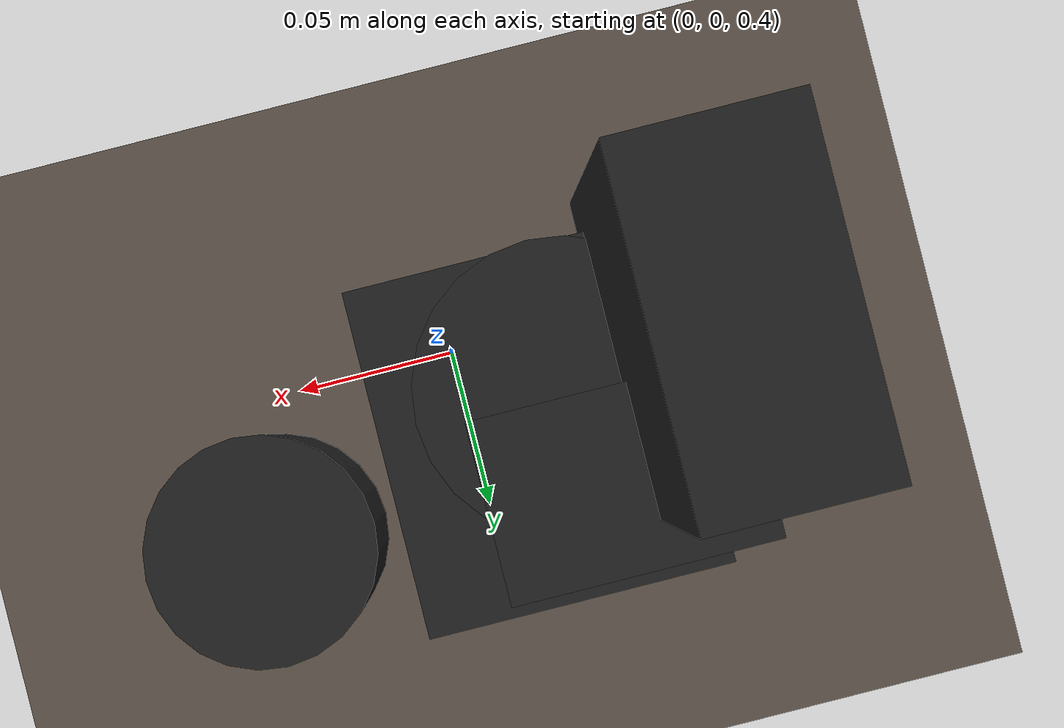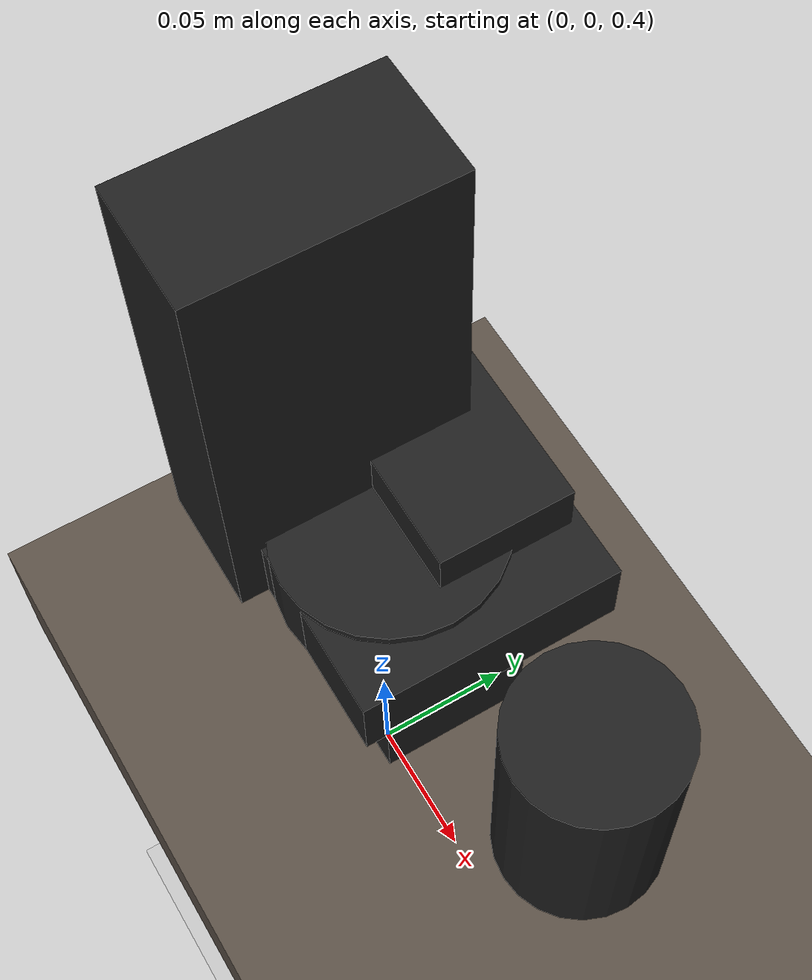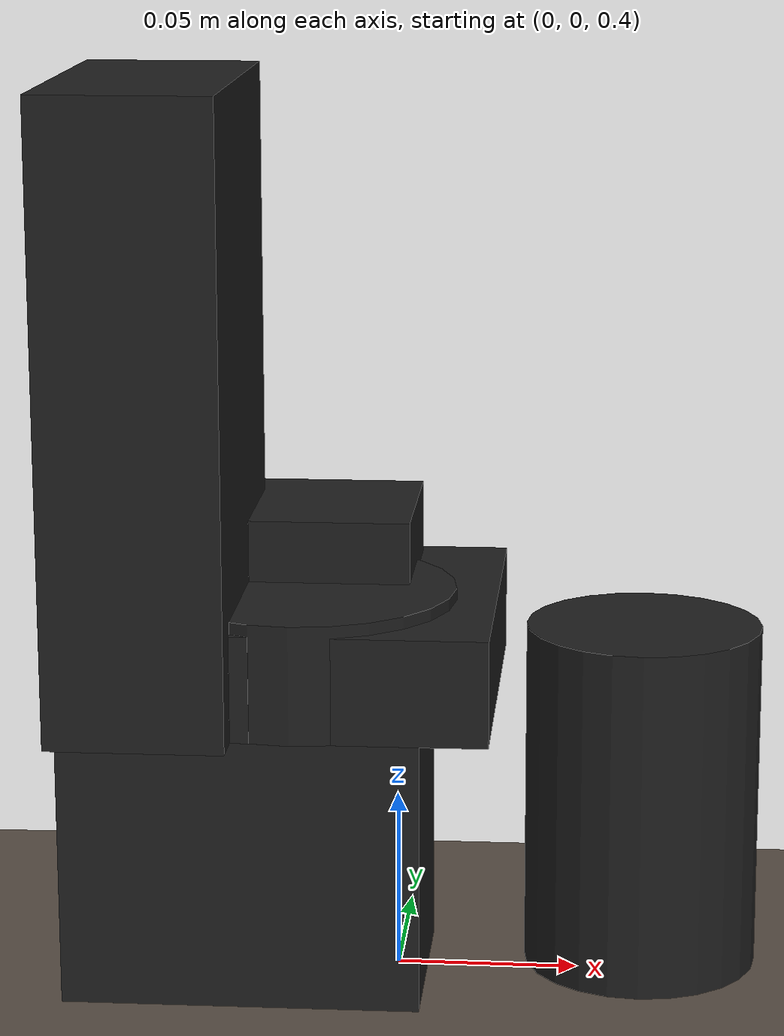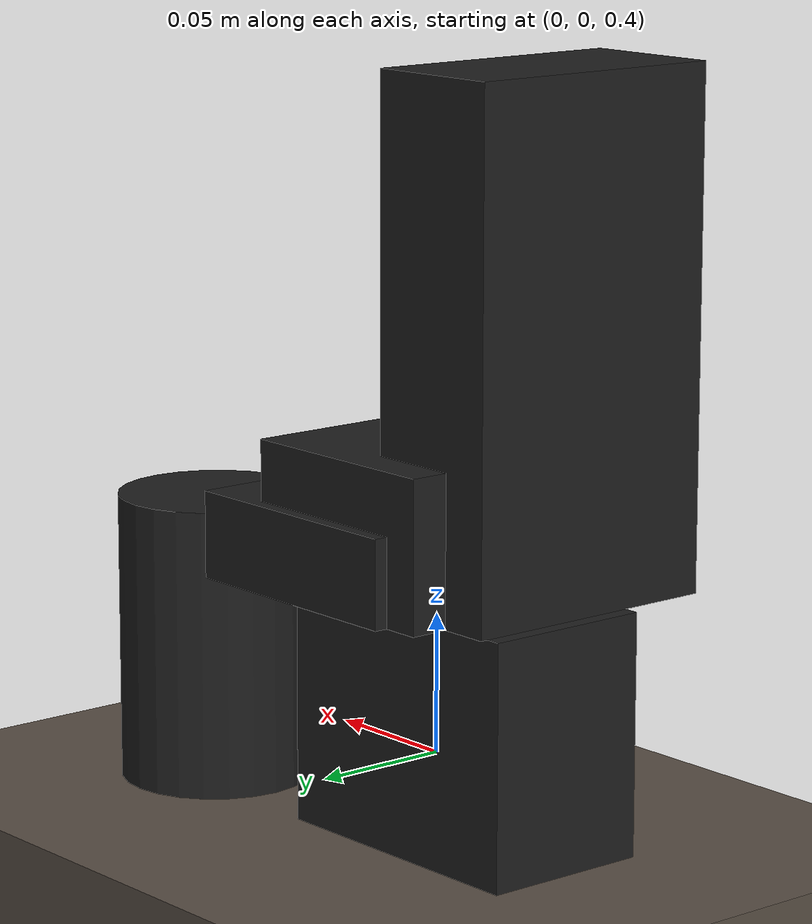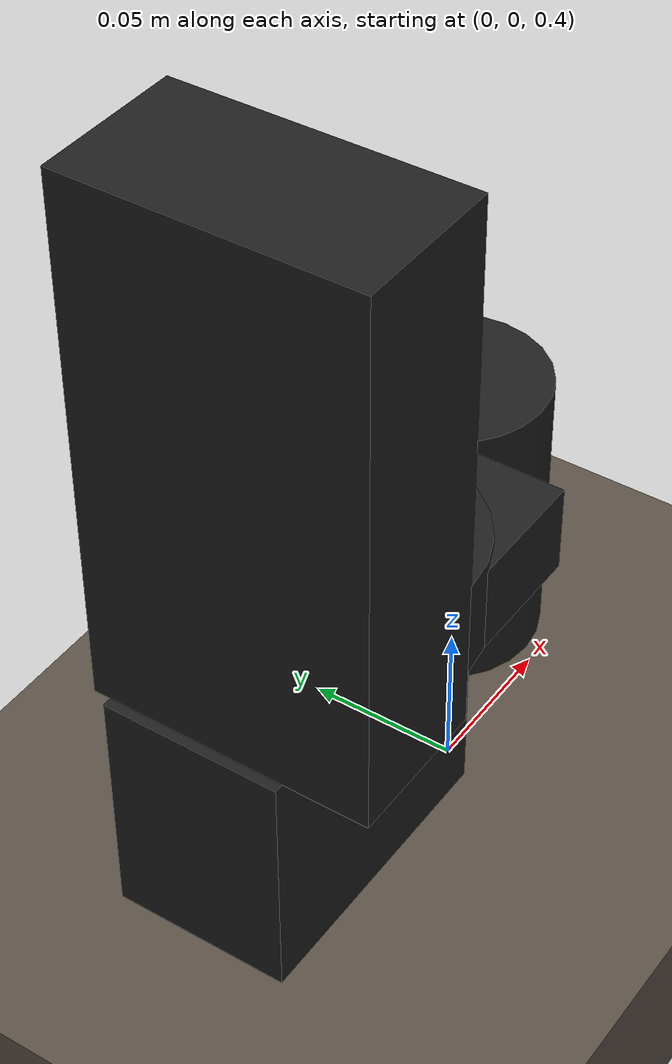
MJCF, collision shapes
<mujoco model="ycb_random_scene_0004">
  <compiler angle="radian" autolimits="true"/>

  <option timestep="0.002" gravity="0 0 -9.81" integrator="RK4"/>
  <visual>
    <global offwidth="1280" offheight="900"/>
  </visual>

  <default>
    <joint damping="0.01"/>
    <geom condim="4" friction="1.05 0.006 0.0001" solref="0.01 1" solimp="0.9 0.95 0.001"/>
  </default>

  <asset>
    <texture name="grid" type="2d" builtin="checker" width="512" height="512" rgb1="0.82 0.82 0.82" rgb2="0.68 0.68 0.68"/>
    <material name="floor_mat" texture="grid" texrepeat="2 2" reflectance="0.15"/>
    <material name="table_mat" rgba="0.35 0.31 0.27 1"/>
    <mesh name="mesh_010_potted_meat_can" file="../../objects/ycb/010_potted_meat_can/google_16k/textured.obj" scale="1.000000000 1.000000000 1.000000000"/>
    <texture name="tex_010_potted_meat_can" type="2d" file="../../objects/ycb/010_potted_meat_can/google_16k/texture_map.png"/>
    <material name="mat_010_potted_meat_can" texture="tex_010_potted_meat_can" specular="0.25" shininess="0.35"/>
    <mesh name="mesh_007_tuna_fish_can" file="../../objects/ycb/007_tuna_fish_can/google_16k/textured.obj" scale="1.000000000 1.000000000 1.000000000"/>
    <texture name="tex_007_tuna_fish_can" type="2d" file="../../objects/ycb/007_tuna_fish_can/google_16k/texture_map.png"/>
    <material name="mat_007_tuna_fish_can" texture="tex_007_tuna_fish_can" specular="0.25" shininess="0.35"/>
    <mesh name="mesh_009_gelatin_box" file="../../objects/ycb/009_gelatin_box/google_16k/textured.obj" scale="1.000000000 1.000000000 1.000000000"/>
    <texture name="tex_009_gelatin_box" type="2d" file="../../objects/ycb/009_gelatin_box/google_16k/texture_map.png"/>
    <material name="mat_009_gelatin_box" texture="tex_009_gelatin_box" specular="0.25" shininess="0.35"/>
    <mesh name="mesh_061_foam_brick" file="../../objects/ycb/061_foam_brick/google_16k/textured.obj" scale="1.000000000 1.000000000 1.000000000"/>
    <texture name="tex_061_foam_brick" type="2d" file="../../objects/ycb/061_foam_brick/google_16k/texture_map.png"/>
    <material name="mat_061_foam_brick" texture="tex_061_foam_brick" specular="0.25" shininess="0.35"/>
    <mesh name="mesh_004_sugar_box" file="../../objects/ycb/004_sugar_box/google_16k/textured.obj" scale="1.000000000 1.000000000 1.000000000"/>
    <texture name="tex_004_sugar_box" type="2d" file="../../objects/ycb/004_sugar_box/google_16k/texture_map.png"/>
    <material name="mat_004_sugar_box" texture="tex_004_sugar_box" specular="0.25" shininess="0.35"/>
    <mesh name="mesh_005_tomato_soup_can" file="../../objects/ycb/005_tomato_soup_can/google_16k/textured.obj" scale="1.000000000 1.000000000 1.000000000"/>
    <texture name="tex_005_tomato_soup_can" type="2d" file="../../objects/ycb/005_tomato_soup_can/google_16k/texture_map.png"/>
    <material name="mat_005_tomato_soup_can" texture="tex_005_tomato_soup_can" specular="0.25" shininess="0.35"/>
  </asset>

  <worldbody>
    <light name="key_light" pos="0.25 -0.55 1.2" dir="-0.2 0.45 -1"/>
    <camera name="overview" mode="targetbody" target="table" pos="0.82 -0.92 1.08" fovy="62"/>
    <camera name="topdown" mode="targetbody" target="table" pos="0.00 0.00 1.45" fovy="54"/>
    <camera name="front" mode="targetbody" target="table" pos="0.00 -1.20 0.72" fovy="55"/>
    <geom name="floor" type="plane" size="1.2 1.2 0.02" material="floor_mat"/>

    <body name="table" pos="0 0 0.35">
      <geom name="table_top" type="box" size="0.50 0.38 0.035" material="table_mat"/>
    </body>

    <body name="obj_010_potted_meat_can" pos="-0.045190 0.027020 0.427772">
      <freejoint/>
      <geom name="obj_010_potted_meat_can_geom" type="box" size="0.051042 0.030052 0.041771" mass="0.370000" rgba="0.12 0.12 0.12 0.0" group="3"/>
      <geom name="obj_010_potted_meat_can_visual" type="mesh" mesh="mesh_010_potted_meat_can" material="mat_010_potted_meat_can" pos="0.032785 0.026552 -0.038583" quat="1.00000000 0.00000000 0.00000000 0.00000000" contype="0" conaffinity="0" group="2"/>
    </body>

    <body name="obj_007_tuna_fish_can" pos="-0.027920 0.020140 0.487312">
      <freejoint/>
      <geom name="obj_007_tuna_fish_can_geom" type="cylinder" size="0.042775 0.016769" mass="0.171000" rgba="0.12 0.12 0.12 0.0" group="3"/>
      <geom name="obj_007_tuna_fish_can_visual" type="mesh" mesh="mesh_007_tuna_fish_can" material="mat_007_tuna_fish_can" pos="0.026049 0.022132 -0.013551" quat="1.00000000 0.00000000 0.00000000 0.00000000" contype="0" conaffinity="0" group="2"/>
    </body>

    <body name="obj_009_gelatin_box" pos="-0.018650 0.029420 0.485580">
      <freejoint/>
      <geom name="obj_009_gelatin_box_geom" type="box" size="0.044702 0.050554 0.015037" mass="0.097000" rgba="0.12 0.12 0.12 0.0" group="3"/>
      <geom name="obj_009_gelatin_box_visual" type="mesh" mesh="mesh_009_gelatin_box" material="mat_009_gelatin_box" pos="0.022775 0.008245 -0.014492" quat="1.00000000 0.00000000 0.00000000 0.00000000" contype="0" conaffinity="0" group="2"/>
    </body>

    <body name="obj_061_foam_brick" pos="-0.037600 0.049160 0.496140">
      <freejoint/>
      <geom name="obj_061_foam_brick_geom" type="box" size="0.038937 0.026280 0.025597" mass="0.028000" rgba="0.12 0.12 0.12 0.0" group="3"/>
      <geom name="obj_061_foam_brick_visual" type="mesh" mesh="mesh_061_foam_brick" material="mat_061_foam_brick" pos="-0.017200 -0.018261 -0.025251" quat="0.70710678 0.00000000 0.00000000 -0.70710678" contype="0" conaffinity="0" group="2"/>
    </body>

    <body name="obj_004_sugar_box" pos="-0.069030 0.015050 0.558551">
      <freejoint/>
      <geom name="obj_004_sugar_box_geom" type="box" size="0.024748 0.047081 0.088008" mass="0.514000" rgba="0.12 0.12 0.12 0.0" group="3"/>
      <geom name="obj_004_sugar_box_visual" type="mesh" mesh="mesh_004_sugar_box" material="mat_004_sugar_box" pos="-0.007467 -0.016712 -0.088039" quat="0.00000000 0.00000000 0.00000000 1.00000000" contype="0" conaffinity="0" group="2"/>
    </body>

    <body name="obj_005_tomato_soup_can" pos="0.067570 0.044610 0.436928">
      <freejoint/>
      <geom name="obj_005_tomato_soup_can_geom" type="cylinder" size="0.033913 0.050928" mass="0.349000" rgba="0.12 0.12 0.12 0.0" group="3"/>
      <geom name="obj_005_tomato_soup_can_visual" type="mesh" mesh="mesh_005_tomato_soup_can" material="mat_005_tomato_soup_can" pos="0.009169 -0.084017 -0.051006" quat="1.00000000 0.00000000 0.00000000 0.00000000" contype="0" conaffinity="0" group="2"/>
    </body>

  </worldbody>
</mujoco>
